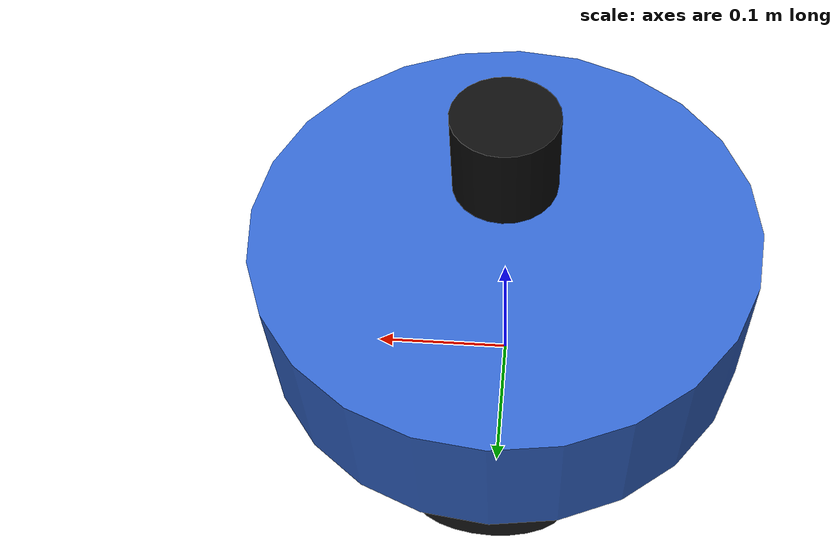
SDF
<?xml version="1.0"?>
<sdf version="1.8">
  <model name="diff_drive_robot">
    <pose>0 0 0.1 0 0 0</pose>

    <!-- base_link -->
    <link name="base_link">
      <inertial>
        <mass>5.0</mass>
        <inertia><ixx>0.1</ixx><iyy>0.1</iyy><izz>0.18</izz></inertia>
      </inertial>
      <collision name="base_col">
        <geometry><cylinder><radius>0.175</radius><length>0.1</length></cylinder></geometry>
      </collision>
      <visual name="base_vis">
        <geometry><cylinder><radius>0.175</radius><length>0.1</length></cylinder></geometry>
        <material><ambient>0.2 0.4 0.8 1</ambient></material>
      </visual>
    </link>

    <!-- Left wheel -->
    <link name="left_wheel">
      <pose>0 0.14 -0.05 -1.5707 0 0</pose>
      <inertial><mass>0.5</mass><inertia><ixx>0.001</ixx><iyy>0.001</iyy><izz>0.001</izz></inertia></inertial>
      <collision name="col"><geometry><cylinder><radius>0.05</radius><length>0.04</length></cylinder></geometry></collision>
      <visual name="vis">
        <geometry><cylinder><radius>0.05</radius><length>0.04</length></cylinder></geometry>
        <material><ambient>0.1 0.1 0.1 1</ambient></material>
      </visual>
    </link>
    <joint name="left_wheel_joint" type="revolute">
      <parent>base_link</parent><child>left_wheel</child>
      <axis><xyz>0 0 1</xyz><limit><lower>-1.79e308</lower><upper>1.79e308</upper></limit></axis>
    </joint>

    <!-- Right wheel -->
    <link name="right_wheel">
      <pose>0 -0.14 -0.05 -1.5707 0 0</pose>
      <inertial><mass>0.5</mass><inertia><ixx>0.001</ixx><iyy>0.001</iyy><izz>0.001</izz></inertia></inertial>
      <collision name="col"><geometry><cylinder><radius>0.05</radius><length>0.04</length></cylinder></geometry></collision>
      <visual name="vis">
        <geometry><cylinder><radius>0.05</radius><length>0.04</length></cylinder></geometry>
        <material><ambient>0.1 0.1 0.1 1</ambient></material>
      </visual>
    </link>
    <joint name="right_wheel_joint" type="revolute">
      <parent>base_link</parent><child>right_wheel</child>
      <axis><xyz>0 0 1</xyz><limit><lower>-1.79e308</lower><upper>1.79e308</upper></limit></axis>
    </joint>

    <!-- Caster -->
    <link name="caster">
      <pose>0.105 0 -0.08 0 0 0</pose>
      <inertial><mass>0.1</mass><inertia><ixx>0.0001</ixx><iyy>0.0001</iyy><izz>0.0001</izz></inertia></inertial>
      <collision name="col"><geometry><sphere><radius>0.03</radius></sphere></geometry>
        <surface><friction><ode><mu>0</mu><mu2>0</mu2></ode></friction></surface>
      </collision>
      <visual name="vis"><geometry><sphere><radius>0.03</radius></sphere></geometry>
        <material><ambient>0.5 0.5 0.5 1</ambient></material></visual>
    </link>
    <joint name="caster_joint" type="ball">
      <parent>base_link</parent><child>caster</child>
    </joint>

    <!-- LiDAR link -->
    <link name="lidar_link">
      <pose>0 0 0.12 0 0 0</pose>
      <inertial><mass>0.1</mass><inertia><ixx>0.0001</ixx><iyy>0.0001</iyy><izz>0.0001</izz></inertia></inertial>
      <visual name="vis">
        <geometry><cylinder><radius>0.035</radius><length>0.06</length></cylinder></geometry>
        <material><ambient>0.05 0.05 0.05 1</ambient></material>
      </visual>
      <sensor name="lidar" type="gpu_lidar">
        <update_rate>10</update_rate>
        <lidar>
          <scan>
            <horizontal>
              <samples>360</samples>
              <resolution>1</resolution>
              <min_angle>-3.14159</min_angle>
              <max_angle>3.14159</max_angle>
            </horizontal>
          </scan>
          <range><min>0.12</min><max>5.0</max><resolution>0.01</resolution></range>
          <noise><type>gaussian</type><mean>0</mean><stddev>0.01</stddev></noise>
        </lidar>
        <always_on>1</always_on>
        <visualize>false</visualize>
        <topic>scan</topic>
      </sensor>
    </link>
    <joint name="lidar_joint" type="fixed">
      <parent>base_link</parent><child>lidar_link</child>
    </joint>

    <!-- ── Plugins ── -->

    <!-- Differential drive -->
    <plugin filename="ignition-gazebo-diff-drive-system"
            name="ignition::gazebo::systems::DiffDrive">
      <left_joint>left_wheel_joint</left_joint>
      <right_joint>right_wheel_joint</right_joint>
      <wheel_separation>0.28</wheel_separation>
      <wheel_radius>0.05</wheel_radius>
      <max_linear_acceleration>2</max_linear_acceleration>
      <max_angular_acceleration>4</max_angular_acceleration>
      <topic>cmd_vel</topic>
      <odom_topic>odometry</odom_topic>
      <frame_id>odom</frame_id>
      <child_frame_id>base_link</child_frame_id>
    </plugin>

    <!-- Odometry publisher -->
    <plugin filename="ignition-gazebo-odometry-publisher-system"
            name="ignition::gazebo::systems::OdometryPublisher">
      <odom_frame>odom</odom_frame>
      <robot_base_frame>base_link</robot_base_frame>
    </plugin>

    <!-- Joint state publisher (for TF) -->
    <plugin filename="ignition-gazebo-joint-state-publisher-system"
            name="ignition::gazebo::systems::JointStatePublisher"/>

    <!-- Sensor system (for LiDAR) -->
    <plugin filename="ignition-gazebo-sensors-system"
            name="ignition::gazebo::systems::Sensors">
      <render_engine>ogre2</render_engine>
    </plugin>

  </model>
</sdf>
